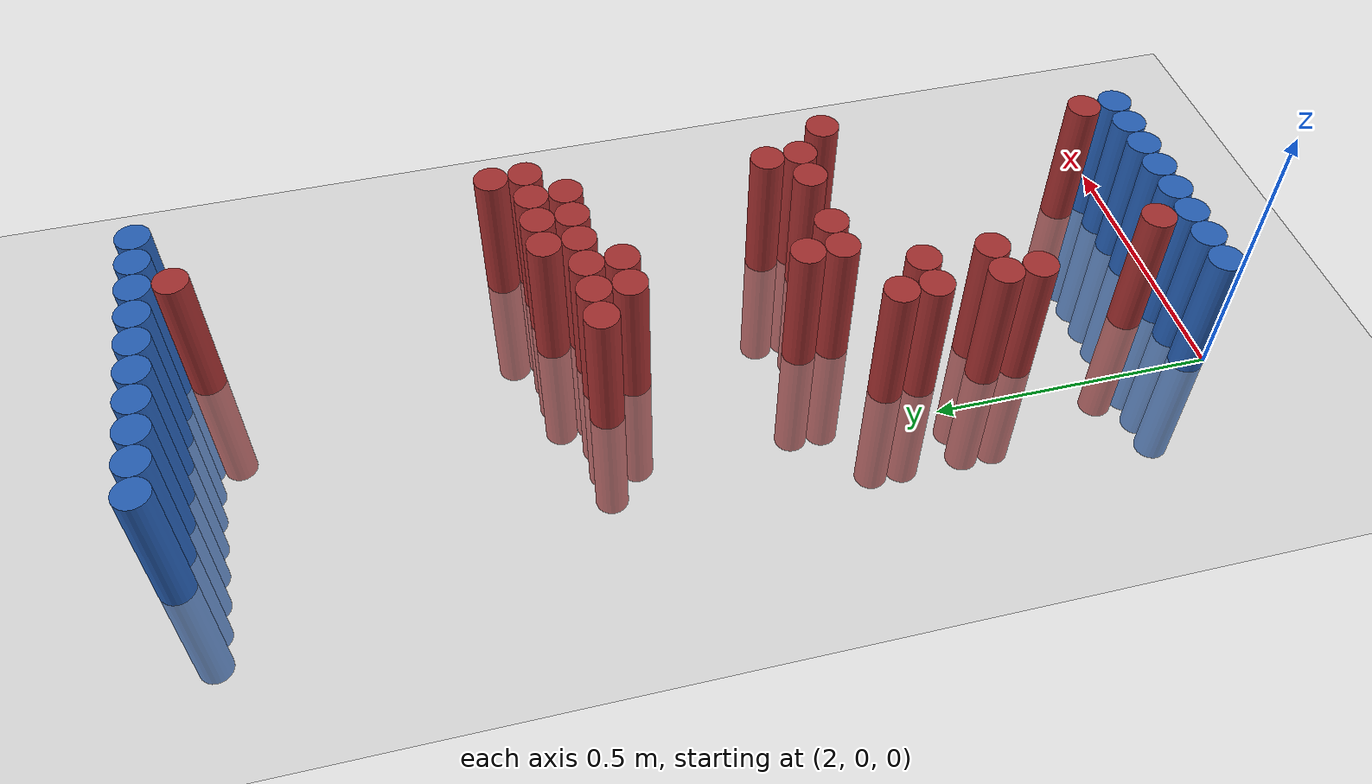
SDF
<sdf version="1.6">
 <world name="default">
  <model name="ground_plane">
   <static>1</static>
   <link name="link">
    <collision name="collision">
     <geometry><plane><normal>0 0 1</normal><size>100 100</size></plane></geometry>
     <surface><friction><ode><mu>100</mu><mu2>50</mu2></ode></friction></surface>
    </collision>
    <visual name="visual">
     <cast_shadows>0</cast_shadows>
     <geometry><plane><normal>0 0 1</normal><size>100 100</size></plane></geometry>
     <material>
      <script><uri>file://media/materials/scripts/gazebo.material</uri><name>Gazebo/Grey</name></script>
     </material>
    </visual>
   </link>
  </model>
  <model name="unit_cylinder_92">
   <static>1</static>
   <pose>1.950000 1.770000 0.000000 0.000000 0.000000 0.000000</pose>
   <link name="link">
    <inertial>
     <mass>1</mass>
     <inertia><ixx>0.145833</ixx><ixy>0</ixy><ixz>0</ixz><iyy>0.145833</iyy><iyz>0</iyz><izz>0.125</izz></inertia>
    </inertial>
    <collision name="collision">
     <geometry><cylinder><radius>0.030000</radius><length>0.5</length></cylinder></geometry>
    </collision>
    <visual name="visual">
     <geometry><cylinder><radius>0.030000</radius><length>0.5</length></cylinder></geometry>
     <material>
      <ambient>0.152000 0.379000 0.720000 1</ambient>
      <diffuse>0.152000 0.379000 0.720000 1</diffuse>
     </material>
     <material>
      <script><name>Gazebo/Grey</name><uri>file://media/materials/scripts/gazebo.material</uri></script>
     </material>
    </visual>
   </link>
  </model>
  <model name="unit_cylinder_93">
   <static>1</static>
   <pose>2.010000 0.030000 0.000000 0.000000 0.000000 0.000000</pose>
   <link name="link">
    <inertial>
     <mass>1</mass>
     <inertia><ixx>0.145833</ixx><ixy>0</ixy><ixz>0</ixz><iyy>0.145833</iyy><iyz>0</iyz><izz>0.125</izz></inertia>
    </inertial>
    <collision name="collision">
     <geometry><cylinder><radius>0.030000</radius><length>0.5</length></cylinder></geometry>
    </collision>
    <visual name="visual">
     <geometry><cylinder><radius>0.030000</radius><length>0.5</length></cylinder></geometry>
     <material>
      <ambient>0.152000 0.379000 0.720000 1</ambient>
      <diffuse>0.152000 0.379000 0.720000 1</diffuse>
     </material>
     <material>
      <script><name>Gazebo/Grey</name><uri>file://media/materials/scripts/gazebo.material</uri></script>
     </material>
    </visual>
   </link>
  </model>
  <model name="unit_cylinder_94">
   <static>1</static>
   <pose>2.010000 1.770000 0.000000 0.000000 0.000000 0.000000</pose>
   <link name="link">
    <inertial>
     <mass>1</mass>
     <inertia><ixx>0.145833</ixx><ixy>0</ixy><ixz>0</ixz><iyy>0.145833</iyy><iyz>0</iyz><izz>0.125</izz></inertia>
    </inertial>
    <collision name="collision">
     <geometry><cylinder><radius>0.030000</radius><length>0.5</length></cylinder></geometry>
    </collision>
    <visual name="visual">
     <geometry><cylinder><radius>0.030000</radius><length>0.5</length></cylinder></geometry>
     <material>
      <ambient>0.152000 0.379000 0.720000 1</ambient>
      <diffuse>0.152000 0.379000 0.720000 1</diffuse>
     </material>
     <material>
      <script><name>Gazebo/Grey</name><uri>file://media/materials/scripts/gazebo.material</uri></script>
     </material>
    </visual>
   </link>
  </model>
  <model name="unit_cylinder_95">
   <static>1</static>
   <pose>2.070000 1.770000 0.000000 0.000000 0.000000 0.000000</pose>
   <link name="link">
    <inertial>
     <mass>1</mass>
     <inertia><ixx>0.145833</ixx><ixy>0</ixy><ixz>0</ixz><iyy>0.145833</iyy><iyz>0</iyz><izz>0.125</izz></inertia>
    </inertial>
    <collision name="collision">
     <geometry><cylinder><radius>0.030000</radius><length>0.5</length></cylinder></geometry>
    </collision>
    <visual name="visual">
     <geometry><cylinder><radius>0.030000</radius><length>0.5</length></cylinder></geometry>
     <material>
      <ambient>0.152000 0.379000 0.720000 1</ambient>
      <diffuse>0.152000 0.379000 0.720000 1</diffuse>
     </material>
     <material>
      <script><name>Gazebo/Grey</name><uri>file://media/materials/scripts/gazebo.material</uri></script>
     </material>
    </visual>
   </link>
  </model>
  <model name="unit_cylinder_96">
   <static>1</static>
   <pose>2.130000 1.770000 0.000000 0.000000 0.000000 0.000000</pose>
   <link name="link">
    <inertial>
     <mass>1</mass>
     <inertia><ixx>0.145833</ixx><ixy>0</ixy><ixz>0</ixz><iyy>0.145833</iyy><iyz>0</iyz><izz>0.125</izz></inertia>
    </inertial>
    <collision name="collision">
     <geometry><cylinder><radius>0.030000</radius><length>0.5</length></cylinder></geometry>
    </collision>
    <visual name="visual">
     <geometry><cylinder><radius>0.030000</radius><length>0.5</length></cylinder></geometry>
     <material>
      <ambient>0.152000 0.379000 0.720000 1</ambient>
      <diffuse>0.152000 0.379000 0.720000 1</diffuse>
     </material>
     <material>
      <script><name>Gazebo/Grey</name><uri>file://media/materials/scripts/gazebo.material</uri></script>
     </material>
    </visual>
   </link>
  </model>
  <model name="unit_cylinder_97">
   <static>1</static>
   <pose>2.190000 1.770000 0.000000 0.000000 0.000000 0.000000</pose>
   <link name="link">
    <inertial>
     <mass>1</mass>
     <inertia><ixx>0.145833</ixx><ixy>0</ixy><ixz>0</ixz><iyy>0.145833</iyy><iyz>0</iyz><izz>0.125</izz></inertia>
    </inertial>
    <collision name="collision">
     <geometry><cylinder><radius>0.030000</radius><length>0.5</length></cylinder></geometry>
    </collision>
    <visual name="visual">
     <geometry><cylinder><radius>0.030000</radius><length>0.5</length></cylinder></geometry>
     <material>
      <ambient>0.152000 0.379000 0.720000 1</ambient>
      <diffuse>0.152000 0.379000 0.720000 1</diffuse>
     </material>
     <material>
      <script><name>Gazebo/Grey</name><uri>file://media/materials/scripts/gazebo.material</uri></script>
     </material>
    </visual>
   </link>
  </model>
  <model name="unit_cylinder_98">
   <static>1</static>
   <pose>2.250000 1.770000 0.000000 0.000000 0.000000 0.000000</pose>
   <link name="link">
    <inertial>
     <mass>1</mass>
     <inertia><ixx>0.145833</ixx><ixy>0</ixy><ixz>0</ixz><iyy>0.145833</iyy><iyz>0</iyz><izz>0.125</izz></inertia>
    </inertial>
    <collision name="collision">
     <geometry><cylinder><radius>0.030000</radius><length>0.5</length></cylinder></geometry>
    </collision>
    <visual name="visual">
     <geometry><cylinder><radius>0.030000</radius><length>0.5</length></cylinder></geometry>
     <material>
      <ambient>0.152000 0.379000 0.720000 1</ambient>
      <diffuse>0.152000 0.379000 0.720000 1</diffuse>
     </material>
     <material>
      <script><name>Gazebo/Grey</name><uri>file://media/materials/scripts/gazebo.material</uri></script>
     </material>
    </visual>
   </link>
  </model>
  <model name="unit_cylinder_99">
   <static>1</static>
   <pose>2.310000 1.770000 0.000000 0.000000 0.000000 0.000000</pose>
   <link name="link">
    <inertial>
     <mass>1</mass>
     <inertia><ixx>0.145833</ixx><ixy>0</ixy><ixz>0</ixz><iyy>0.145833</iyy><iyz>0</iyz><izz>0.125</izz></inertia>
    </inertial>
    <collision name="collision">
     <geometry><cylinder><radius>0.030000</radius><length>0.5</length></cylinder></geometry>
    </collision>
    <visual name="visual">
     <geometry><cylinder><radius>0.030000</radius><length>0.5</length></cylinder></geometry>
     <material>
      <ambient>0.152000 0.379000 0.720000 1</ambient>
      <diffuse>0.152000 0.379000 0.720000 1</diffuse>
     </material>
     <material>
      <script><name>Gazebo/Grey</name><uri>file://media/materials/scripts/gazebo.material</uri></script>
     </material>
    </visual>
   </link>
  </model>
  <model name="unit_cylinder_100">
   <static>1</static>
   <pose>2.370000 1.770000 0.000000 0.000000 0.000000 0.000000</pose>
   <link name="link">
    <inertial>
     <mass>1</mass>
     <inertia><ixx>0.145833</ixx><ixy>0</ixy><ixz>0</ixz><iyy>0.145833</iyy><iyz>0</iyz><izz>0.125</izz></inertia>
    </inertial>
    <collision name="collision">
     <geometry><cylinder><radius>0.030000</radius><length>0.5</length></cylinder></geometry>
    </collision>
    <visual name="visual">
     <geometry><cylinder><radius>0.030000</radius><length>0.5</length></cylinder></geometry>
     <material>
      <ambient>0.152000 0.379000 0.720000 1</ambient>
      <diffuse>0.152000 0.379000 0.720000 1</diffuse>
     </material>
     <material>
      <script><name>Gazebo/Grey</name><uri>file://media/materials/scripts/gazebo.material</uri></script>
     </material>
    </visual>
   </link>
  </model>
  <model name="unit_cylinder_101">
   <static>1</static>
   <pose>2.430000 1.770000 0.000000 0.000000 0.000000 0.000000</pose>
   <link name="link">
    <inertial>
     <mass>1</mass>
     <inertia><ixx>0.145833</ixx><ixy>0</ixy><ixz>0</ixz><iyy>0.145833</iyy><iyz>0</iyz><izz>0.125</izz></inertia>
    </inertial>
    <collision name="collision">
     <geometry><cylinder><radius>0.030000</radius><length>0.5</length></cylinder></geometry>
    </collision>
    <visual name="visual">
     <geometry><cylinder><radius>0.030000</radius><length>0.5</length></cylinder></geometry>
     <material>
      <ambient>0.152000 0.379000 0.720000 1</ambient>
      <diffuse>0.152000 0.379000 0.720000 1</diffuse>
     </material>
     <material>
      <script><name>Gazebo/Grey</name><uri>file://media/materials/scripts/gazebo.material</uri></script>
     </material>
    </visual>
   </link>
  </model>
  <model name="unit_cylinder_102">
   <static>1</static>
   <pose>2.490000 1.770000 0.000000 0.000000 0.000000 0.000000</pose>
   <link name="link">
    <inertial>
     <mass>1</mass>
     <inertia><ixx>0.145833</ixx><ixy>0</ixy><ixz>0</ixz><iyy>0.145833</iyy><iyz>0</iyz><izz>0.125</izz></inertia>
    </inertial>
    <collision name="collision">
     <geometry><cylinder><radius>0.030000</radius><length>0.5</length></cylinder></geometry>
    </collision>
    <visual name="visual">
     <geometry><cylinder><radius>0.030000</radius><length>0.5</length></cylinder></geometry>
     <material>
      <ambient>0.152000 0.379000 0.720000 1</ambient>
      <diffuse>0.152000 0.379000 0.720000 1</diffuse>
     </material>
     <material>
      <script><name>Gazebo/Grey</name><uri>file://media/materials/scripts/gazebo.material</uri></script>
     </material>
    </visual>
   </link>
  </model>
  <model name="unit_cylinder_125">
   <static>1</static>
   <pose>2.370000 1.710000 0.000000 0.000000 0.000000 0.000000</pose>
   <link name="link">
    <inertial>
     <mass>1</mass>
     <inertia><ixx>0.145833</ixx><ixy>0</ixy><ixz>0</ixz><iyy>0.145833</iyy><iyz>0</iyz><izz>0.125</izz></inertia>
    </inertial>
    <collision name="collision">
     <geometry><cylinder><radius>0.030000</radius><length>0.5</length></cylinder></geometry>
    </collision>
    <visual name="visual">
     <geometry><cylinder><radius>0.030000</radius><length>0.5</length></cylinder></geometry>
     <material>
      <ambient>0.648000 0.192000 0.192000 1</ambient>
      <diffuse>0.648000 0.192000 0.192000 1</diffuse>
     </material>
     <material>
      <script><name>Gazebo/Grey</name><uri>file://media/materials/scripts/gazebo.material</uri></script>
     </material>
    </visual>
   </link>
  </model>
  <model name="unit_cylinder_156">
   <static>1</static>
   <pose>2.490000 1.170000 0.000000 0.000000 0.000000 0.000000</pose>
   <link name="link">
    <inertial>
     <mass>1</mass>
     <inertia><ixx>0.145833</ixx><ixy>0</ixy><ixz>0</ixz><iyy>0.145833</iyy><iyz>0</iyz><izz>0.125</izz></inertia>
    </inertial>
    <collision name="collision">
     <geometry><cylinder><radius>0.030000</radius><length>0.5</length></cylinder></geometry>
    </collision>
    <visual name="visual">
     <geometry><cylinder><radius>0.030000</radius><length>0.5</length></cylinder></geometry>
     <material>
      <ambient>0.648000 0.192000 0.192000 1</ambient>
      <diffuse>0.648000 0.192000 0.192000 1</diffuse>
     </material>
     <material>
      <script><name>Gazebo/Grey</name><uri>file://media/materials/scripts/gazebo.material</uri></script>
     </material>
    </visual>
   </link>
  </model>
  <model name="unit_cylinder_161">
   <static>1</static>
   <pose>2.310000 1.110000 0.000000 0.000000 0.000000 0.000000</pose>
   <link name="link">
    <inertial>
     <mass>1</mass>
     <inertia><ixx>0.145833</ixx><ixy>0</ixy><ixz>0</ixz><iyy>0.145833</iyy><iyz>0</iyz><izz>0.125</izz></inertia>
    </inertial>
    <collision name="collision">
     <geometry><cylinder><radius>0.030000</radius><length>0.5</length></cylinder></geometry>
    </collision>
    <visual name="visual">
     <geometry><cylinder><radius>0.030000</radius><length>0.5</length></cylinder></geometry>
     <material>
      <ambient>0.648000 0.192000 0.192000 1</ambient>
      <diffuse>0.648000 0.192000 0.192000 1</diffuse>
     </material>
     <material>
      <script><name>Gazebo/Grey</name><uri>file://media/materials/scripts/gazebo.material</uri></script>
     </material>
    </visual>
   </link>
  </model>
  <model name="unit_cylinder_162">
   <static>1</static>
   <pose>2.370000 1.110000 0.000000 0.000000 0.000000 0.000000</pose>
   <link name="link">
    <inertial>
     <mass>1</mass>
     <inertia><ixx>0.145833</ixx><ixy>0</ixy><ixz>0</ixz><iyy>0.145833</iyy><iyz>0</iyz><izz>0.125</izz></inertia>
    </inertial>
    <collision name="collision">
     <geometry><cylinder><radius>0.030000</radius><length>0.5</length></cylinder></geometry>
    </collision>
    <visual name="visual">
     <geometry><cylinder><radius>0.030000</radius><length>0.5</length></cylinder></geometry>
     <material>
      <ambient>0.648000 0.192000 0.192000 1</ambient>
      <diffuse>0.648000 0.192000 0.192000 1</diffuse>
     </material>
     <material>
      <script><name>Gazebo/Grey</name><uri>file://media/materials/scripts/gazebo.material</uri></script>
     </material>
    </visual>
   </link>
  </model>
  <model name="unit_cylinder_163">
   <static>1</static>
   <pose>2.430000 1.110000 0.000000 0.000000 0.000000 0.000000</pose>
   <link name="link">
    <inertial>
     <mass>1</mass>
     <inertia><ixx>0.145833</ixx><ixy>0</ixy><ixz>0</ixz><iyy>0.145833</iyy><iyz>0</iyz><izz>0.125</izz></inertia>
    </inertial>
    <collision name="collision">
     <geometry><cylinder><radius>0.030000</radius><length>0.5</length></cylinder></geometry>
    </collision>
    <visual name="visual">
     <geometry><cylinder><radius>0.030000</radius><length>0.5</length></cylinder></geometry>
     <material>
      <ambient>0.648000 0.192000 0.192000 1</ambient>
      <diffuse>0.648000 0.192000 0.192000 1</diffuse>
     </material>
     <material>
      <script><name>Gazebo/Grey</name><uri>file://media/materials/scripts/gazebo.material</uri></script>
     </material>
    </visual>
   </link>
  </model>
  <model name="unit_cylinder_164">
   <static>1</static>
   <pose>2.490000 1.110000 0.000000 0.000000 0.000000 0.000000</pose>
   <link name="link">
    <inertial>
     <mass>1</mass>
     <inertia><ixx>0.145833</ixx><ixy>0</ixy><ixz>0</ixz><iyy>0.145833</iyy><iyz>0</iyz><izz>0.125</izz></inertia>
    </inertial>
    <collision name="collision">
     <geometry><cylinder><radius>0.030000</radius><length>0.5</length></cylinder></geometry>
    </collision>
    <visual name="visual">
     <geometry><cylinder><radius>0.030000</radius><length>0.5</length></cylinder></geometry>
     <material>
      <ambient>0.648000 0.192000 0.192000 1</ambient>
      <diffuse>0.648000 0.192000 0.192000 1</diffuse>
     </material>
     <material>
      <script><name>Gazebo/Grey</name><uri>file://media/materials/scripts/gazebo.material</uri></script>
     </material>
    </visual>
   </link>
  </model>
  <model name="unit_cylinder_170">
   <static>1</static>
   <pose>2.130000 1.050000 0.000000 0.000000 0.000000 0.000000</pose>
   <link name="link">
    <inertial>
     <mass>1</mass>
     <inertia><ixx>0.145833</ixx><ixy>0</ixy><ixz>0</ixz><iyy>0.145833</iyy><iyz>0</iyz><izz>0.125</izz></inertia>
    </inertial>
    <collision name="collision">
     <geometry><cylinder><radius>0.030000</radius><length>0.5</length></cylinder></geometry>
    </collision>
    <visual name="visual">
     <geometry><cylinder><radius>0.030000</radius><length>0.5</length></cylinder></geometry>
     <material>
      <ambient>0.648000 0.192000 0.192000 1</ambient>
      <diffuse>0.648000 0.192000 0.192000 1</diffuse>
     </material>
     <material>
      <script><name>Gazebo/Grey</name><uri>file://media/materials/scripts/gazebo.material</uri></script>
     </material>
    </visual>
   </link>
  </model>
  <model name="unit_cylinder_171">
   <static>1</static>
   <pose>2.190000 1.050000 0.000000 0.000000 0.000000 0.000000</pose>
   <link name="link">
    <inertial>
     <mass>1</mass>
     <inertia><ixx>0.145833</ixx><ixy>0</ixy><ixz>0</ixz><iyy>0.145833</iyy><iyz>0</iyz><izz>0.125</izz></inertia>
    </inertial>
    <collision name="collision">
     <geometry><cylinder><radius>0.030000</radius><length>0.5</length></cylinder></geometry>
    </collision>
    <visual name="visual">
     <geometry><cylinder><radius>0.030000</radius><length>0.5</length></cylinder></geometry>
     <material>
      <ambient>0.648000 0.192000 0.192000 1</ambient>
      <diffuse>0.648000 0.192000 0.192000 1</diffuse>
     </material>
     <material>
      <script><name>Gazebo/Grey</name><uri>file://media/materials/scripts/gazebo.material</uri></script>
     </material>
    </visual>
   </link>
  </model>
  <model name="unit_cylinder_172">
   <static>1</static>
   <pose>2.250000 1.050000 0.000000 0.000000 0.000000 0.000000</pose>
   <link name="link">
    <inertial>
     <mass>1</mass>
     <inertia><ixx>0.145833</ixx><ixy>0</ixy><ixz>0</ixz><iyy>0.145833</iyy><iyz>0</iyz><izz>0.125</izz></inertia>
    </inertial>
    <collision name="collision">
     <geometry><cylinder><radius>0.030000</radius><length>0.5</length></cylinder></geometry>
    </collision>
    <visual name="visual">
     <geometry><cylinder><radius>0.030000</radius><length>0.5</length></cylinder></geometry>
     <material>
      <ambient>0.648000 0.192000 0.192000 1</ambient>
      <diffuse>0.648000 0.192000 0.192000 1</diffuse>
     </material>
     <material>
      <script><name>Gazebo/Grey</name><uri>file://media/materials/scripts/gazebo.material</uri></script>
     </material>
    </visual>
   </link>
  </model>
  <model name="unit_cylinder_173">
   <static>1</static>
   <pose>2.310000 1.050000 0.000000 0.000000 0.000000 0.000000</pose>
   <link name="link">
    <inertial>
     <mass>1</mass>
     <inertia><ixx>0.145833</ixx><ixy>0</ixy><ixz>0</ixz><iyy>0.145833</iyy><iyz>0</iyz><izz>0.125</izz></inertia>
    </inertial>
    <collision name="collision">
     <geometry><cylinder><radius>0.030000</radius><length>0.5</length></cylinder></geometry>
    </collision>
    <visual name="visual">
     <geometry><cylinder><radius>0.030000</radius><length>0.5</length></cylinder></geometry>
     <material>
      <ambient>0.648000 0.192000 0.192000 1</ambient>
      <diffuse>0.648000 0.192000 0.192000 1</diffuse>
     </material>
     <material>
      <script><name>Gazebo/Grey</name><uri>file://media/materials/scripts/gazebo.material</uri></script>
     </material>
    </visual>
   </link>
  </model>
  <model name="unit_cylinder_174">
   <static>1</static>
   <pose>2.370000 1.050000 0.000000 0.000000 0.000000 0.000000</pose>
   <link name="link">
    <inertial>
     <mass>1</mass>
     <inertia><ixx>0.145833</ixx><ixy>0</ixy><ixz>0</ixz><iyy>0.145833</iyy><iyz>0</iyz><izz>0.125</izz></inertia>
    </inertial>
    <collision name="collision">
     <geometry><cylinder><radius>0.030000</radius><length>0.5</length></cylinder></geometry>
    </collision>
    <visual name="visual">
     <geometry><cylinder><radius>0.030000</radius><length>0.5</length></cylinder></geometry>
     <material>
      <ambient>0.648000 0.192000 0.192000 1</ambient>
      <diffuse>0.648000 0.192000 0.192000 1</diffuse>
     </material>
     <material>
      <script><name>Gazebo/Grey</name><uri>file://media/materials/scripts/gazebo.material</uri></script>
     </material>
    </visual>
   </link>
  </model>
  <model name="unit_cylinder_175">
   <static>1</static>
   <pose>2.430000 1.050000 0.000000 0.000000 0.000000 0.000000</pose>
   <link name="link">
    <inertial>
     <mass>1</mass>
     <inertia><ixx>0.145833</ixx><ixy>0</ixy><ixz>0</ixz><iyy>0.145833</iyy><iyz>0</iyz><izz>0.125</izz></inertia>
    </inertial>
    <collision name="collision">
     <geometry><cylinder><radius>0.030000</radius><length>0.5</length></cylinder></geometry>
    </collision>
    <visual name="visual">
     <geometry><cylinder><radius>0.030000</radius><length>0.5</length></cylinder></geometry>
     <material>
      <ambient>0.648000 0.192000 0.192000 1</ambient>
      <diffuse>0.648000 0.192000 0.192000 1</diffuse>
     </material>
     <material>
      <script><name>Gazebo/Grey</name><uri>file://media/materials/scripts/gazebo.material</uri></script>
     </material>
    </visual>
   </link>
  </model>
  <model name="unit_cylinder_183">
   <static>1</static>
   <pose>2.190000 0.990000 0.000000 0.000000 0.000000 0.000000</pose>
   <link name="link">
    <inertial>
     <mass>1</mass>
     <inertia><ixx>0.145833</ixx><ixy>0</ixy><ixz>0</ixz><iyy>0.145833</iyy><iyz>0</iyz><izz>0.125</izz></inertia>
    </inertial>
    <collision name="collision">
     <geometry><cylinder><radius>0.030000</radius><length>0.5</length></cylinder></geometry>
    </collision>
    <visual name="visual">
     <geometry><cylinder><radius>0.030000</radius><length>0.5</length></cylinder></geometry>
     <material>
      <ambient>0.648000 0.192000 0.192000 1</ambient>
      <diffuse>0.648000 0.192000 0.192000 1</diffuse>
     </material>
     <material>
      <script><name>Gazebo/Grey</name><uri>file://media/materials/scripts/gazebo.material</uri></script>
     </material>
    </visual>
   </link>
  </model>
  <model name="unit_cylinder_184">
   <static>1</static>
   <pose>2.250000 0.990000 0.000000 0.000000 0.000000 0.000000</pose>
   <link name="link">
    <inertial>
     <mass>1</mass>
     <inertia><ixx>0.145833</ixx><ixy>0</ixy><ixz>0</ixz><iyy>0.145833</iyy><iyz>0</iyz><izz>0.125</izz></inertia>
    </inertial>
    <collision name="collision">
     <geometry><cylinder><radius>0.030000</radius><length>0.5</length></cylinder></geometry>
    </collision>
    <visual name="visual">
     <geometry><cylinder><radius>0.030000</radius><length>0.5</length></cylinder></geometry>
     <material>
      <ambient>0.648000 0.192000 0.192000 1</ambient>
      <diffuse>0.648000 0.192000 0.192000 1</diffuse>
     </material>
     <material>
      <script><name>Gazebo/Grey</name><uri>file://media/materials/scripts/gazebo.material</uri></script>
     </material>
    </visual>
   </link>
  </model>
  <model name="unit_cylinder_204">
   <static>1</static>
   <pose>2.190000 0.690000 0.000000 0.000000 0.000000 0.000000</pose>
   <link name="link">
    <inertial>
     <mass>1</mass>
     <inertia><ixx>0.145833</ixx><ixy>0</ixy><ixz>0</ixz><iyy>0.145833</iyy><iyz>0</iyz><izz>0.125</izz></inertia>
    </inertial>
    <collision name="collision">
     <geometry><cylinder><radius>0.030000</radius><length>0.5</length></cylinder></geometry>
    </collision>
    <visual name="visual">
     <geometry><cylinder><radius>0.030000</radius><length>0.5</length></cylinder></geometry>
     <material>
      <ambient>0.648000 0.192000 0.192000 1</ambient>
      <diffuse>0.648000 0.192000 0.192000 1</diffuse>
     </material>
     <material>
      <script><name>Gazebo/Grey</name><uri>file://media/materials/scripts/gazebo.material</uri></script>
     </material>
    </visual>
   </link>
  </model>
  <model name="unit_cylinder_205">
   <static>1</static>
   <pose>2.430000 0.690000 0.000000 0.000000 0.000000 0.000000</pose>
   <link name="link">
    <inertial>
     <mass>1</mass>
     <inertia><ixx>0.145833</ixx><ixy>0</ixy><ixz>0</ixz><iyy>0.145833</iyy><iyz>0</iyz><izz>0.125</izz></inertia>
    </inertial>
    <collision name="collision">
     <geometry><cylinder><radius>0.030000</radius><length>0.5</length></cylinder></geometry>
    </collision>
    <visual name="visual">
     <geometry><cylinder><radius>0.030000</radius><length>0.5</length></cylinder></geometry>
     <material>
      <ambient>0.648000 0.192000 0.192000 1</ambient>
      <diffuse>0.648000 0.192000 0.192000 1</diffuse>
     </material>
     <material>
      <script><name>Gazebo/Grey</name><uri>file://media/materials/scripts/gazebo.material</uri></script>
     </material>
    </visual>
   </link>
  </model>
  <model name="unit_cylinder_211">
   <static>1</static>
   <pose>2.190000 0.630000 0.000000 0.000000 0.000000 0.000000</pose>
   <link name="link">
    <inertial>
     <mass>1</mass>
     <inertia><ixx>0.145833</ixx><ixy>0</ixy><ixz>0</ixz><iyy>0.145833</iyy><iyz>0</iyz><izz>0.125</izz></inertia>
    </inertial>
    <collision name="collision">
     <geometry><cylinder><radius>0.030000</radius><length>0.5</length></cylinder></geometry>
    </collision>
    <visual name="visual">
     <geometry><cylinder><radius>0.030000</radius><length>0.5</length></cylinder></geometry>
     <material>
      <ambient>0.648000 0.192000 0.192000 1</ambient>
      <diffuse>0.648000 0.192000 0.192000 1</diffuse>
     </material>
     <material>
      <script><name>Gazebo/Grey</name><uri>file://media/materials/scripts/gazebo.material</uri></script>
     </material>
    </visual>
   </link>
  </model>
  <model name="unit_cylinder_212">
   <static>1</static>
   <pose>2.250000 0.630000 0.000000 0.000000 0.000000 0.000000</pose>
   <link name="link">
    <inertial>
     <mass>1</mass>
     <inertia><ixx>0.145833</ixx><ixy>0</ixy><ixz>0</ixz><iyy>0.145833</iyy><iyz>0</iyz><izz>0.125</izz></inertia>
    </inertial>
    <collision name="collision">
     <geometry><cylinder><radius>0.030000</radius><length>0.5</length></cylinder></geometry>
    </collision>
    <visual name="visual">
     <geometry><cylinder><radius>0.030000</radius><length>0.5</length></cylinder></geometry>
     <material>
      <ambient>0.648000 0.192000 0.192000 1</ambient>
      <diffuse>0.648000 0.192000 0.192000 1</diffuse>
     </material>
     <material>
      <script><name>Gazebo/Grey</name><uri>file://media/materials/scripts/gazebo.material</uri></script>
     </material>
    </visual>
   </link>
  </model>
  <model name="unit_cylinder_213">
   <static>1</static>
   <pose>2.370000 0.630000 0.000000 0.000000 0.000000 0.000000</pose>
   <link name="link">
    <inertial>
     <mass>1</mass>
     <inertia><ixx>0.145833</ixx><ixy>0</ixy><ixz>0</ixz><iyy>0.145833</iyy><iyz>0</iyz><izz>0.125</izz></inertia>
    </inertial>
    <collision name="collision">
     <geometry><cylinder><radius>0.030000</radius><length>0.5</length></cylinder></geometry>
    </collision>
    <visual name="visual">
     <geometry><cylinder><radius>0.030000</radius><length>0.5</length></cylinder></geometry>
     <material>
      <ambient>0.648000 0.192000 0.192000 1</ambient>
      <diffuse>0.648000 0.192000 0.192000 1</diffuse>
     </material>
     <material>
      <script><name>Gazebo/Grey</name><uri>file://media/materials/scripts/gazebo.material</uri></script>
     </material>
    </visual>
   </link>
  </model>
  <model name="unit_cylinder_214">
   <static>1</static>
   <pose>2.430000 0.630000 0.000000 0.000000 0.000000 0.000000</pose>
   <link name="link">
    <inertial>
     <mass>1</mass>
     <inertia><ixx>0.145833</ixx><ixy>0</ixy><ixz>0</ixz><iyy>0.145833</iyy><iyz>0</iyz><izz>0.125</izz></inertia>
    </inertial>
    <collision name="collision">
     <geometry><cylinder><radius>0.030000</radius><length>0.5</length></cylinder></geometry>
    </collision>
    <visual name="visual">
     <geometry><cylinder><radius>0.030000</radius><length>0.5</length></cylinder></geometry>
     <material>
      <ambient>0.648000 0.192000 0.192000 1</ambient>
      <diffuse>0.648000 0.192000 0.192000 1</diffuse>
     </material>
     <material>
      <script><name>Gazebo/Grey</name><uri>file://media/materials/scripts/gazebo.material</uri></script>
     </material>
    </visual>
   </link>
  </model>
  <model name="unit_cylinder_218">
   <static>1</static>
   <pose>2.070000 0.570000 0.000000 0.000000 0.000000 0.000000</pose>
   <link name="link">
    <inertial>
     <mass>1</mass>
     <inertia><ixx>0.145833</ixx><ixy>0</ixy><ixz>0</ixz><iyy>0.145833</iyy><iyz>0</iyz><izz>0.125</izz></inertia>
    </inertial>
    <collision name="collision">
     <geometry><cylinder><radius>0.030000</radius><length>0.5</length></cylinder></geometry>
    </collision>
    <visual name="visual">
     <geometry><cylinder><radius>0.030000</radius><length>0.5</length></cylinder></geometry>
     <material>
      <ambient>0.648000 0.192000 0.192000 1</ambient>
      <diffuse>0.648000 0.192000 0.192000 1</diffuse>
     </material>
     <material>
      <script><name>Gazebo/Grey</name><uri>file://media/materials/scripts/gazebo.material</uri></script>
     </material>
    </visual>
   </link>
  </model>
  <model name="unit_cylinder_219">
   <static>1</static>
   <pose>2.490000 0.570000 0.000000 0.000000 0.000000 0.000000</pose>
   <link name="link">
    <inertial>
     <mass>1</mass>
     <inertia><ixx>0.145833</ixx><ixy>0</ixy><ixz>0</ixz><iyy>0.145833</iyy><iyz>0</iyz><izz>0.125</izz></inertia>
    </inertial>
    <collision name="collision">
     <geometry><cylinder><radius>0.030000</radius><length>0.5</length></cylinder></geometry>
    </collision>
    <visual name="visual">
     <geometry><cylinder><radius>0.030000</radius><length>0.5</length></cylinder></geometry>
     <material>
      <ambient>0.648000 0.192000 0.192000 1</ambient>
      <diffuse>0.648000 0.192000 0.192000 1</diffuse>
     </material>
     <material>
      <script><name>Gazebo/Grey</name><uri>file://media/materials/scripts/gazebo.material</uri></script>
     </material>
    </visual>
   </link>
  </model>
  <model name="unit_cylinder_221">
   <static>1</static>
   <pose>2.070000 0.510000 0.000000 0.000000 0.000000 0.000000</pose>
   <link name="link">
    <inertial>
     <mass>1</mass>
     <inertia><ixx>0.145833</ixx><ixy>0</ixy><ixz>0</ixz><iyy>0.145833</iyy><iyz>0</iyz><izz>0.125</izz></inertia>
    </inertial>
    <collision name="collision">
     <geometry><cylinder><radius>0.030000</radius><length>0.5</length></cylinder></geometry>
    </collision>
    <visual name="visual">
     <geometry><cylinder><radius>0.030000</radius><length>0.5</length></cylinder></geometry>
     <material>
      <ambient>0.648000 0.192000 0.192000 1</ambient>
      <diffuse>0.648000 0.192000 0.192000 1</diffuse>
     </material>
     <material>
      <script><name>Gazebo/Grey</name><uri>file://media/materials/scripts/gazebo.material</uri></script>
     </material>
    </visual>
   </link>
  </model>
  <model name="unit_cylinder_222">
   <static>1</static>
   <pose>2.130000 0.510000 0.000000 0.000000 0.000000 0.000000</pose>
   <link name="link">
    <inertial>
     <mass>1</mass>
     <inertia><ixx>0.145833</ixx><ixy>0</ixy><ixz>0</ixz><iyy>0.145833</iyy><iyz>0</iyz><izz>0.125</izz></inertia>
    </inertial>
    <collision name="collision">
     <geometry><cylinder><radius>0.030000</radius><length>0.5</length></cylinder></geometry>
    </collision>
    <visual name="visual">
     <geometry><cylinder><radius>0.030000</radius><length>0.5</length></cylinder></geometry>
     <material>
      <ambient>0.648000 0.192000 0.192000 1</ambient>
      <diffuse>0.648000 0.192000 0.192000 1</diffuse>
     </material>
     <material>
      <script><name>Gazebo/Grey</name><uri>file://media/materials/scripts/gazebo.material</uri></script>
     </material>
    </visual>
   </link>
  </model>
  <model name="unit_cylinder_232">
   <static>1</static>
   <pose>2.070000 0.390000 0.000000 0.000000 0.000000 0.000000</pose>
   <link name="link">
    <inertial>
     <mass>1</mass>
     <inertia><ixx>0.145833</ixx><ixy>0</ixy><ixz>0</ixz><iyy>0.145833</iyy><iyz>0</iyz><izz>0.125</izz></inertia>
    </inertial>
    <collision name="collision">
     <geometry><cylinder><radius>0.030000</radius><length>0.5</length></cylinder></geometry>
    </collision>
    <visual name="visual">
     <geometry><cylinder><radius>0.030000</radius><length>0.5</length></cylinder></geometry>
     <material>
      <ambient>0.648000 0.192000 0.192000 1</ambient>
      <diffuse>0.648000 0.192000 0.192000 1</diffuse>
     </material>
     <material>
      <script><name>Gazebo/Grey</name><uri>file://media/materials/scripts/gazebo.material</uri></script>
     </material>
    </visual>
   </link>
  </model>
  <model name="unit_cylinder_233">
   <static>1</static>
   <pose>2.130000 0.390000 0.000000 0.000000 0.000000 0.000000</pose>
   <link name="link">
    <inertial>
     <mass>1</mass>
     <inertia><ixx>0.145833</ixx><ixy>0</ixy><ixz>0</ixz><iyy>0.145833</iyy><iyz>0</iyz><izz>0.125</izz></inertia>
    </inertial>
    <collision name="collision">
     <geometry><cylinder><radius>0.030000</radius><length>0.5</length></cylinder></geometry>
    </collision>
    <visual name="visual">
     <geometry><cylinder><radius>0.030000</radius><length>0.5</length></cylinder></geometry>
     <material>
      <ambient>0.648000 0.192000 0.192000 1</ambient>
      <diffuse>0.648000 0.192000 0.192000 1</diffuse>
     </material>
     <material>
      <script><name>Gazebo/Grey</name><uri>file://media/materials/scripts/gazebo.material</uri></script>
     </material>
    </visual>
   </link>
  </model>
  <model name="unit_cylinder_235">
   <static>1</static>
   <pose>2.070000 0.330000 0.000000 0.000000 0.000000 0.000000</pose>
   <link name="link">
    <inertial>
     <mass>1</mass>
     <inertia><ixx>0.145833</ixx><ixy>0</ixy><ixz>0</ixz><iyy>0.145833</iyy><iyz>0</iyz><izz>0.125</izz></inertia>
    </inertial>
    <collision name="collision">
     <geometry><cylinder><radius>0.030000</radius><length>0.5</length></cylinder></geometry>
    </collision>
    <visual name="visual">
     <geometry><cylinder><radius>0.030000</radius><length>0.5</length></cylinder></geometry>
     <material>
      <ambient>0.648000 0.192000 0.192000 1</ambient>
      <diffuse>0.648000 0.192000 0.192000 1</diffuse>
     </material>
     <material>
      <script><name>Gazebo/Grey</name><uri>file://media/materials/scripts/gazebo.material</uri></script>
     </material>
    </visual>
   </link>
  </model>
  <model name="unit_cylinder_237">
   <static>1</static>
   <pose>2.130000 0.090000 0.000000 0.000000 0.000000 0.000000</pose>
   <link name="link">
    <inertial>
     <mass>1</mass>
     <inertia><ixx>0.145833</ixx><ixy>0</ixy><ixz>0</ixz><iyy>0.145833</iyy><iyz>0</iyz><izz>0.125</izz></inertia>
    </inertial>
    <collision name="collision">
     <geometry><cylinder><radius>0.030000</radius><length>0.5</length></cylinder></geometry>
    </collision>
    <visual name="visual">
     <geometry><cylinder><radius>0.030000</radius><length>0.5</length></cylinder></geometry>
     <material>
      <ambient>0.648000 0.192000 0.192000 1</ambient>
      <diffuse>0.648000 0.192000 0.192000 1</diffuse>
     </material>
     <material>
      <script><name>Gazebo/Grey</name><uri>file://media/materials/scripts/gazebo.material</uri></script>
     </material>
    </visual>
   </link>
  </model>
  <model name="unit_cylinder_238">
   <static>1</static>
   <pose>2.430000 0.090000 0.000000 0.000000 0.000000 0.000000</pose>
   <link name="link">
    <inertial>
     <mass>1</mass>
     <inertia><ixx>0.145833</ixx><ixy>0</ixy><ixz>0</ixz><iyy>0.145833</iyy><iyz>0</iyz><izz>0.125</izz></inertia>
    </inertial>
    <collision name="collision">
     <geometry><cylinder><radius>0.030000</radius><length>0.5</length></cylinder></geometry>
    </collision>
    <visual name="visual">
     <geometry><cylinder><radius>0.030000</radius><length>0.5</length></cylinder></geometry>
     <material>
      <ambient>0.648000 0.192000 0.192000 1</ambient>
      <diffuse>0.648000 0.192000 0.192000 1</diffuse>
     </material>
     <material>
      <script><name>Gazebo/Grey</name><uri>file://media/materials/scripts/gazebo.material</uri></script>
     </material>
    </visual>
   </link>
  </model>
  <model name="unit_cylinder_247">
   <static>1</static>
   <pose>2.070000 0.030000 0.000000 0.000000 0.000000 0.000000</pose>
   <link name="link">
    <inertial>
     <mass>1</mass>
     <inertia><ixx>0.145833</ixx><ixy>0</ixy><ixz>0</ixz><iyy>0.145833</iyy><iyz>0</iyz><izz>0.125</izz></inertia>
    </inertial>
    <collision name="collision">
     <geometry><cylinder><radius>0.030000</radius><length>0.5</length></cylinder></geometry>
    </collision>
    <visual name="visual">
     <geometry><cylinder><radius>0.030000</radius><length>0.5</length></cylinder></geometry>
     <material>
      <ambient>0.152000 0.379000 0.720000 1</ambient>
      <diffuse>0.152000 0.379000 0.720000 1</diffuse>
     </material>
     <material>
      <script><name>Gazebo/Grey</name><uri>file://media/materials/scripts/gazebo.material</uri></script>
     </material>
    </visual>
   </link>
  </model>
  <model name="unit_cylinder_248">
   <static>1</static>
   <pose>2.130000 0.030000 0.000000 0.000000 0.000000 0.000000</pose>
   <link name="link">
    <inertial>
     <mass>1</mass>
     <inertia><ixx>0.145833</ixx><ixy>0</ixy><ixz>0</ixz><iyy>0.145833</iyy><iyz>0</iyz><izz>0.125</izz></inertia>
    </inertial>
    <collision name="collision">
     <geometry><cylinder><radius>0.030000</radius><length>0.5</length></cylinder></geometry>
    </collision>
    <visual name="visual">
     <geometry><cylinder><radius>0.030000</radius><length>0.5</length></cylinder></geometry>
     <material>
      <ambient>0.152000 0.379000 0.720000 1</ambient>
      <diffuse>0.152000 0.379000 0.720000 1</diffuse>
     </material>
     <material>
      <script><name>Gazebo/Grey</name><uri>file://media/materials/scripts/gazebo.material</uri></script>
     </material>
    </visual>
   </link>
  </model>
  <model name="unit_cylinder_249">
   <static>1</static>
   <pose>2.190000 0.030000 0.000000 0.000000 0.000000 0.000000</pose>
   <link name="link">
    <inertial>
     <mass>1</mass>
     <inertia><ixx>0.145833</ixx><ixy>0</ixy><ixz>0</ixz><iyy>0.145833</iyy><iyz>0</iyz><izz>0.125</izz></inertia>
    </inertial>
    <collision name="collision">
     <geometry><cylinder><radius>0.030000</radius><length>0.5</length></cylinder></geometry>
    </collision>
    <visual name="visual">
     <geometry><cylinder><radius>0.030000</radius><length>0.5</length></cylinder></geometry>
     <material>
      <ambient>0.152000 0.379000 0.720000 1</ambient>
      <diffuse>0.152000 0.379000 0.720000 1</diffuse>
     </material>
     <material>
      <script><name>Gazebo/Grey</name><uri>file://media/materials/scripts/gazebo.material</uri></script>
     </material>
    </visual>
   </link>
  </model>
  <model name="unit_cylinder_250">
   <static>1</static>
   <pose>2.250000 0.030000 0.000000 0.000000 0.000000 0.000000</pose>
   <link name="link">
    <inertial>
     <mass>1</mass>
     <inertia><ixx>0.145833</ixx><ixy>0</ixy><ixz>0</ixz><iyy>0.145833</iyy><iyz>0</iyz><izz>0.125</izz></inertia>
    </inertial>
    <collision name="collision">
     <geometry><cylinder><radius>0.030000</radius><length>0.5</length></cylinder></geometry>
    </collision>
    <visual name="visual">
     <geometry><cylinder><radius>0.030000</radius><length>0.5</length></cylinder></geometry>
     <material>
      <ambient>0.152000 0.379000 0.720000 1</ambient>
      <diffuse>0.152000 0.379000 0.720000 1</diffuse>
     </material>
     <material>
      <script><name>Gazebo/Grey</name><uri>file://media/materials/scripts/gazebo.material</uri></script>
     </material>
    </visual>
   </link>
  </model>
  <model name="unit_cylinder_251">
   <static>1</static>
   <pose>2.310000 0.030000 0.000000 0.000000 0.000000 0.000000</pose>
   <link name="link">
    <inertial>
     <mass>1</mass>
     <inertia><ixx>0.145833</ixx><ixy>0</ixy><ixz>0</ixz><iyy>0.145833</iyy><iyz>0</iyz><izz>0.125</izz></inertia>
    </inertial>
    <collision name="collision">
     <geometry><cylinder><radius>0.030000</radius><length>0.5</length></cylinder></geometry>
    </collision>
    <visual name="visual">
     <geometry><cylinder><radius>0.030000</radius><length>0.5</length></cylinder></geometry>
     <material>
      <ambient>0.152000 0.379000 0.720000 1</ambient>
      <diffuse>0.152000 0.379000 0.720000 1</diffuse>
     </material>
     <material>
      <script><name>Gazebo/Grey</name><uri>file://media/materials/scripts/gazebo.material</uri></script>
     </material>
    </visual>
   </link>
  </model>
  <model name="unit_cylinder_252">
   <static>1</static>
   <pose>2.370000 0.030000 0.000000 0.000000 0.000000 0.000000</pose>
   <link name="link">
    <inertial>
     <mass>1</mass>
     <inertia><ixx>0.145833</ixx><ixy>0</ixy><ixz>0</ixz><iyy>0.145833</iyy><iyz>0</iyz><izz>0.125</izz></inertia>
    </inertial>
    <collision name="collision">
     <geometry><cylinder><radius>0.030000</radius><length>0.5</length></cylinder></geometry>
    </collision>
    <visual name="visual">
     <geometry><cylinder><radius>0.030000</radius><length>0.5</length></cylinder></geometry>
     <material>
      <ambient>0.152000 0.379000 0.720000 1</ambient>
      <diffuse>0.152000 0.379000 0.720000 1</diffuse>
     </material>
     <material>
      <script><name>Gazebo/Grey</name><uri>file://media/materials/scripts/gazebo.material</uri></script>
     </material>
    </visual>
   </link>
  </model>
  <model name="unit_cylinder_253">
   <static>1</static>
   <pose>2.430000 0.030000 0.000000 0.000000 0.000000 0.000000</pose>
   <link name="link">
    <inertial>
     <mass>1</mass>
     <inertia><ixx>0.145833</ixx><ixy>0</ixy><ixz>0</ixz><iyy>0.145833</iyy><iyz>0</iyz><izz>0.125</izz></inertia>
    </inertial>
    <collision name="collision">
     <geometry><cylinder><radius>0.030000</radius><length>0.5</length></cylinder></geometry>
    </collision>
    <visual name="visual">
     <geometry><cylinder><radius>0.030000</radius><length>0.5</length></cylinder></geometry>
     <material>
      <ambient>0.152000 0.379000 0.720000 1</ambient>
      <diffuse>0.152000 0.379000 0.720000 1</diffuse>
     </material>
     <material>
      <script><name>Gazebo/Grey</name><uri>file://media/materials/scripts/gazebo.material</uri></script>
     </material>
    </visual>
   </link>
  </model>
 </world>
</sdf>
